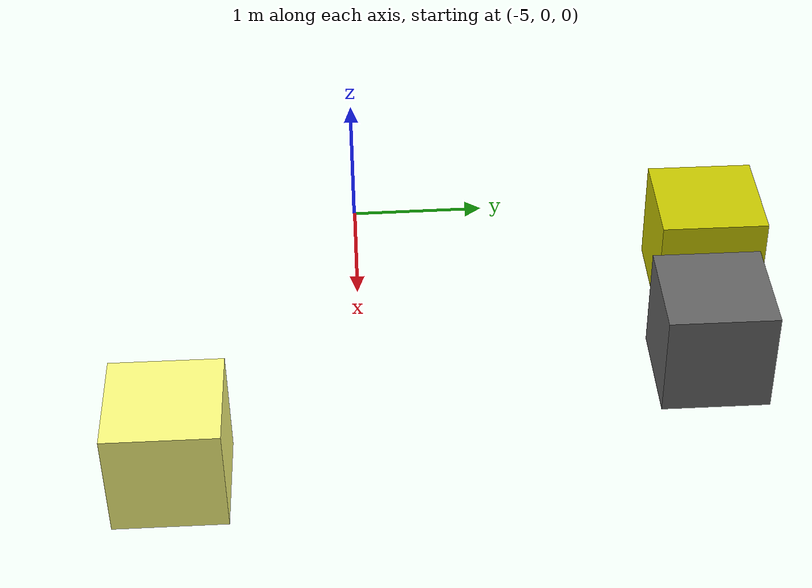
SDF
<sdf version="1.6">
 <world name="default">
  <model name="2_sarimsi">
   <link name="link">
    <inertial>
     <mass>1</mass>
     <inertia><ixx>1</ixx><ixy>0</ixy><ixz>0</ixz><iyy>1</iyy><iyz>0</iyz><izz>1</izz></inertia>
    </inertial>
    <visual name="visual">
     <geometry><mesh><uri>model://number1/meshes/number.dae</uri><scale>1 1 1</scale></mesh></geometry>
     <material>
      <script>
       <uri>model://number3/materials/scripts</uri>
       <uri>model://number3/materials/textures</uri>
       <name>Number/Three</name>
      </script>
      <ambient>1 1 0.5 1</ambient>
      <diffuse>1 1 0.5 1</diffuse>
      <specular>0 0 0 1</specular>
      <emissive>0 0 0 1</emissive>
      <shader type="vertex"><normal_map>__default__</normal_map></shader>
     </material>
    </visual>
   </link>
   <static>1</static>
   <pose>-2.43045 -1.3291 0 0 -0 0</pose>
  </model>
  <model name="5_gri">
   <link name="link">
    <inertial>
     <mass>1</mass>
     <inertia><ixx>1</ixx><ixy>0</ixy><ixz>0</ixz><iyy>1</iyy><iyz>0</iyz><izz>1</izz></inertia>
    </inertial>
    <visual name="visual">
     <geometry><mesh><uri>model://number1/meshes/number.dae</uri><scale>1 1 1</scale></mesh></geometry>
     <material>
      <script>
       <uri>model://number5/materials/scripts</uri>
       <uri>model://number5/materials/textures</uri>
       <name>Number/Five</name>
      </script>
      <ambient>0.4 0.4 0.4 1</ambient>
      <diffuse>0.4 0.4 0.4 1</diffuse>
      <specular>0 0 0 1</specular>
      <emissive>0 0 0 1</emissive>
      <shader type="vertex"><normal_map>__default__</normal_map></shader>
     </material>
    </visual>
   </link>
   <static>1</static>
   <pose>-3.39422 2.5819 0 0 -0 0</pose>
  </model>
  <model name="8_sari">
   <link name="link">
    <inertial>
     <mass>1</mass>
     <inertia><ixx>1</ixx><ixy>0</ixy><ixz>0</ixz><iyy>1</iyy><iyz>0</iyz><izz>1</izz></inertia>
    </inertial>
    <visual name="visual">
     <geometry><mesh><uri>model://number1/meshes/number.dae</uri><scale>1 1 1</scale></mesh></geometry>
     <material>
      <script>
       <uri>model://number8/materials/scripts</uri>
       <uri>model://number8/materials/textures</uri>
       <name>Number/Eight</name>
      </script>
      <ambient>0.8 0.8 0 1</ambient>
      <diffuse>0.8 0.8 0 1</diffuse>
      <specular>0 0 0 1</specular>
      <emissive>0 0 0 1</emissive>
      <shader type="vertex"><normal_map>__default__</normal_map></shader>
     </material>
    </visual>
   </link>
   <static>1</static>
   <pose>-4.50124 2.70796 0 0 -0 0</pose>
  </model>
 </world>
</sdf>
